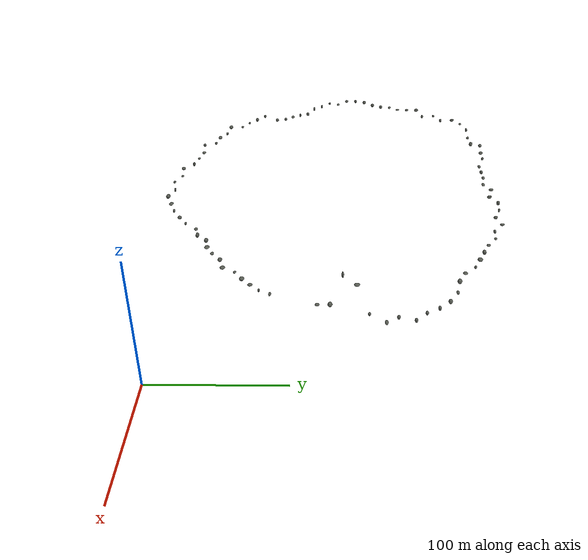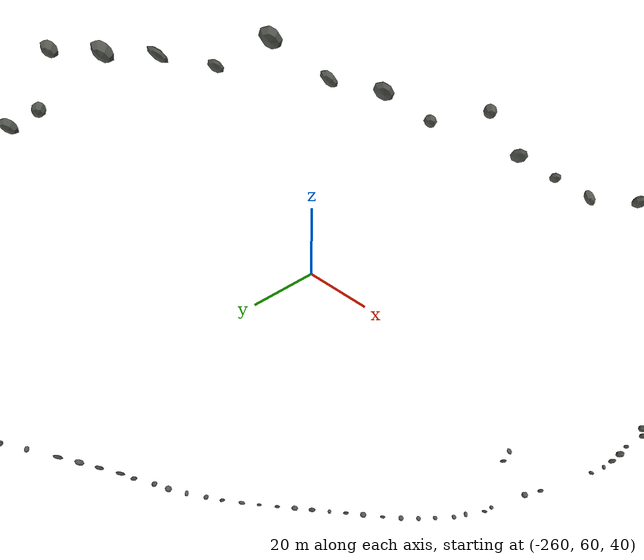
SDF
<?xml version='1.0' encoding='utf-8'?>
<sdf version="1.9">
  <model name="summit_shore">
    <static>true</static>
    <link name="structure">
      <visual name="visual_rock">
        <geometry>
          <mesh>
            <uri>model://summit_shore/meshes/visual/rock.dae</uri>
          </mesh>
        </geometry>
        <material>
          <ambient>0.34 0.355 0.32 1</ambient>
          <diffuse>0.34 0.355 0.32 1</diffuse>
          <specular>0.15 0.15 0.15 1</specular>
          <pbr>
            <metal>
              <roughness>0.8</roughness>
              <metalness>0.0</metalness>
            </metal>
          </pbr>
        </material>
      </visual>
      <collision name="shore_rock_0">
        <geometry>
          <mesh>
            <uri>model://summit_shore/meshes/collision/shore_rock_0.dae</uri>
          </mesh>
        </geometry>
      </collision>
      <collision name="shore_rock_1">
        <geometry>
          <mesh>
            <uri>model://summit_shore/meshes/collision/shore_rock_1.dae</uri>
          </mesh>
        </geometry>
      </collision>
      <collision name="shore_rock_2">
        <geometry>
          <mesh>
            <uri>model://summit_shore/meshes/collision/shore_rock_2.dae</uri>
          </mesh>
        </geometry>
      </collision>
      <collision name="shore_rock_3">
        <geometry>
          <mesh>
            <uri>model://summit_shore/meshes/collision/shore_rock_3.dae</uri>
          </mesh>
        </geometry>
      </collision>
      <collision name="shore_rock_4">
        <geometry>
          <mesh>
            <uri>model://summit_shore/meshes/collision/shore_rock_4.dae</uri>
          </mesh>
        </geometry>
      </collision>
      <collision name="shore_rock_5">
        <geometry>
          <mesh>
            <uri>model://summit_shore/meshes/collision/shore_rock_5.dae</uri>
          </mesh>
        </geometry>
      </collision>
      <collision name="shore_rock_6">
        <geometry>
          <mesh>
            <uri>model://summit_shore/meshes/collision/shore_rock_6.dae</uri>
          </mesh>
        </geometry>
      </collision>
      <collision name="shore_rock_7">
        <geometry>
          <mesh>
            <uri>model://summit_shore/meshes/collision/shore_rock_7.dae</uri>
          </mesh>
        </geometry>
      </collision>
      <collision name="shore_rock_8">
        <geometry>
          <mesh>
            <uri>model://summit_shore/meshes/collision/shore_rock_8.dae</uri>
          </mesh>
        </geometry>
      </collision>
      <collision name="shore_rock_9">
        <geometry>
          <mesh>
            <uri>model://summit_shore/meshes/collision/shore_rock_9.dae</uri>
          </mesh>
        </geometry>
      </collision>
      <collision name="shore_rock_10">
        <geometry>
          <mesh>
            <uri>model://summit_shore/meshes/collision/shore_rock_10.dae</uri>
          </mesh>
        </geometry>
      </collision>
      <collision name="shore_rock_11">
        <geometry>
          <mesh>
            <uri>model://summit_shore/meshes/collision/shore_rock_11.dae</uri>
          </mesh>
        </geometry>
      </collision>
      <collision name="shore_rock_12">
        <geometry>
          <mesh>
            <uri>model://summit_shore/meshes/collision/shore_rock_12.dae</uri>
          </mesh>
        </geometry>
      </collision>
      <collision name="shore_rock_13">
        <geometry>
          <mesh>
            <uri>model://summit_shore/meshes/collision/shore_rock_13.dae</uri>
          </mesh>
        </geometry>
      </collision>
      <collision name="shore_rock_14">
        <geometry>
          <mesh>
            <uri>model://summit_shore/meshes/collision/shore_rock_14.dae</uri>
          </mesh>
        </geometry>
      </collision>
      <collision name="shore_rock_15">
        <geometry>
          <mesh>
            <uri>model://summit_shore/meshes/collision/shore_rock_15.dae</uri>
          </mesh>
        </geometry>
      </collision>
      <collision name="shore_rock_16">
        <geometry>
          <mesh>
            <uri>model://summit_shore/meshes/collision/shore_rock_16.dae</uri>
          </mesh>
        </geometry>
      </collision>
      <collision name="shore_rock_17">
        <geometry>
          <mesh>
            <uri>model://summit_shore/meshes/collision/shore_rock_17.dae</uri>
          </mesh>
        </geometry>
      </collision>
      <collision name="shore_rock_18">
        <geometry>
          <mesh>
            <uri>model://summit_shore/meshes/collision/shore_rock_18.dae</uri>
          </mesh>
        </geometry>
      </collision>
      <collision name="shore_rock_19">
        <geometry>
          <mesh>
            <uri>model://summit_shore/meshes/collision/shore_rock_19.dae</uri>
          </mesh>
        </geometry>
      </collision>
      <collision name="shore_rock_20">
        <geometry>
          <mesh>
            <uri>model://summit_shore/meshes/collision/shore_rock_20.dae</uri>
          </mesh>
        </geometry>
      </collision>
      <collision name="shore_rock_21">
        <geometry>
          <mesh>
            <uri>model://summit_shore/meshes/collision/shore_rock_21.dae</uri>
          </mesh>
        </geometry>
      </collision>
      <collision name="shore_rock_22">
        <geometry>
          <mesh>
            <uri>model://summit_shore/meshes/collision/shore_rock_22.dae</uri>
          </mesh>
        </geometry>
      </collision>
      <collision name="shore_rock_23">
        <geometry>
          <mesh>
            <uri>model://summit_shore/meshes/collision/shore_rock_23.dae</uri>
          </mesh>
        </geometry>
      </collision>
      <collision name="shore_rock_24">
        <geometry>
          <mesh>
            <uri>model://summit_shore/meshes/collision/shore_rock_24.dae</uri>
          </mesh>
        </geometry>
      </collision>
      <collision name="shore_rock_25">
        <geometry>
          <mesh>
            <uri>model://summit_shore/meshes/collision/shore_rock_25.dae</uri>
          </mesh>
        </geometry>
      </collision>
      <collision name="shore_rock_26">
        <geometry>
          <mesh>
            <uri>model://summit_shore/meshes/collision/shore_rock_26.dae</uri>
          </mesh>
        </geometry>
      </collision>
      <collision name="shore_rock_27">
        <geometry>
          <mesh>
            <uri>model://summit_shore/meshes/collision/shore_rock_27.dae</uri>
          </mesh>
        </geometry>
      </collision>
      <collision name="shore_rock_28">
        <geometry>
          <mesh>
            <uri>model://summit_shore/meshes/collision/shore_rock_28.dae</uri>
          </mesh>
        </geometry>
      </collision>
      <collision name="shore_rock_29">
        <geometry>
          <mesh>
            <uri>model://summit_shore/meshes/collision/shore_rock_29.dae</uri>
          </mesh>
        </geometry>
      </collision>
      <collision name="shore_rock_30">
        <geometry>
          <mesh>
            <uri>model://summit_shore/meshes/collision/shore_rock_30.dae</uri>
          </mesh>
        </geometry>
      </collision>
      <collision name="shore_rock_31">
        <geometry>
          <mesh>
            <uri>model://summit_shore/meshes/collision/shore_rock_31.dae</uri>
          </mesh>
        </geometry>
      </collision>
      <collision name="shore_rock_32">
        <geometry>
          <mesh>
            <uri>model://summit_shore/meshes/collision/shore_rock_32.dae</uri>
          </mesh>
        </geometry>
      </collision>
      <collision name="shore_rock_33">
        <geometry>
          <mesh>
            <uri>model://summit_shore/meshes/collision/shore_rock_33.dae</uri>
          </mesh>
        </geometry>
      </collision>
      <collision name="shore_rock_34">
        <geometry>
          <mesh>
            <uri>model://summit_shore/meshes/collision/shore_rock_34.dae</uri>
          </mesh>
        </geometry>
      </collision>
      <collision name="shore_rock_35">
        <geometry>
          <mesh>
            <uri>model://summit_shore/meshes/collision/shore_rock_35.dae</uri>
          </mesh>
        </geometry>
      </collision>
      <collision name="shore_rock_36">
        <geometry>
          <mesh>
            <uri>model://summit_shore/meshes/collision/shore_rock_36.dae</uri>
          </mesh>
        </geometry>
      </collision>
      <collision name="shore_rock_37">
        <geometry>
          <mesh>
            <uri>model://summit_shore/meshes/collision/shore_rock_37.dae</uri>
          </mesh>
        </geometry>
      </collision>
      <collision name="shore_rock_38">
        <geometry>
          <mesh>
            <uri>model://summit_shore/meshes/collision/shore_rock_38.dae</uri>
          </mesh>
        </geometry>
      </collision>
      <collision name="shore_rock_39">
        <geometry>
          <mesh>
            <uri>model://summit_shore/meshes/collision/shore_rock_39.dae</uri>
          </mesh>
        </geometry>
      </collision>
      <collision name="shore_rock_40">
        <geometry>
          <mesh>
            <uri>model://summit_shore/meshes/collision/shore_rock_40.dae</uri>
          </mesh>
        </geometry>
      </collision>
      <collision name="shore_rock_41">
        <geometry>
          <mesh>
            <uri>model://summit_shore/meshes/collision/shore_rock_41.dae</uri>
          </mesh>
        </geometry>
      </collision>
      <collision name="shore_rock_42">
        <geometry>
          <mesh>
            <uri>model://summit_shore/meshes/collision/shore_rock_42.dae</uri>
          </mesh>
        </geometry>
      </collision>
      <collision name="shore_rock_43">
        <geometry>
          <mesh>
            <uri>model://summit_shore/meshes/collision/shore_rock_43.dae</uri>
          </mesh>
        </geometry>
      </collision>
      <collision name="shore_rock_44">
        <geometry>
          <mesh>
            <uri>model://summit_shore/meshes/collision/shore_rock_44.dae</uri>
          </mesh>
        </geometry>
      </collision>
      <collision name="shore_rock_45">
        <geometry>
          <mesh>
            <uri>model://summit_shore/meshes/collision/shore_rock_45.dae</uri>
          </mesh>
        </geometry>
      </collision>
      <collision name="shore_rock_46">
        <geometry>
          <mesh>
            <uri>model://summit_shore/meshes/collision/shore_rock_46.dae</uri>
          </mesh>
        </geometry>
      </collision>
      <collision name="shore_rock_47">
        <geometry>
          <mesh>
            <uri>model://summit_shore/meshes/collision/shore_rock_47.dae</uri>
          </mesh>
        </geometry>
      </collision>
      <collision name="shore_rock_48">
        <geometry>
          <mesh>
            <uri>model://summit_shore/meshes/collision/shore_rock_48.dae</uri>
          </mesh>
        </geometry>
      </collision>
      <collision name="shore_rock_49">
        <geometry>
          <mesh>
            <uri>model://summit_shore/meshes/collision/shore_rock_49.dae</uri>
          </mesh>
        </geometry>
      </collision>
      <collision name="shore_rock_50">
        <geometry>
          <mesh>
            <uri>model://summit_shore/meshes/collision/shore_rock_50.dae</uri>
          </mesh>
        </geometry>
      </collision>
      <collision name="shore_rock_51">
        <geometry>
          <mesh>
            <uri>model://summit_shore/meshes/collision/shore_rock_51.dae</uri>
          </mesh>
        </geometry>
      </collision>
      <collision name="shore_rock_52">
        <geometry>
          <mesh>
            <uri>model://summit_shore/meshes/collision/shore_rock_52.dae</uri>
          </mesh>
        </geometry>
      </collision>
      <collision name="shore_rock_53">
        <geometry>
          <mesh>
            <uri>model://summit_shore/meshes/collision/shore_rock_53.dae</uri>
          </mesh>
        </geometry>
      </collision>
      <collision name="shore_rock_54">
        <geometry>
          <mesh>
            <uri>model://summit_shore/meshes/collision/shore_rock_54.dae</uri>
          </mesh>
        </geometry>
      </collision>
      <collision name="shore_rock_55">
        <geometry>
          <mesh>
            <uri>model://summit_shore/meshes/collision/shore_rock_55.dae</uri>
          </mesh>
        </geometry>
      </collision>
      <collision name="shore_rock_56">
        <geometry>
          <mesh>
            <uri>model://summit_shore/meshes/collision/shore_rock_56.dae</uri>
          </mesh>
        </geometry>
      </collision>
      <collision name="shore_rock_57">
        <geometry>
          <mesh>
            <uri>model://summit_shore/meshes/collision/shore_rock_57.dae</uri>
          </mesh>
        </geometry>
      </collision>
      <collision name="shore_rock_58">
        <geometry>
          <mesh>
            <uri>model://summit_shore/meshes/collision/shore_rock_58.dae</uri>
          </mesh>
        </geometry>
      </collision>
      <collision name="shore_rock_59">
        <geometry>
          <mesh>
            <uri>model://summit_shore/meshes/collision/shore_rock_59.dae</uri>
          </mesh>
        </geometry>
      </collision>
      <collision name="shore_rock_60">
        <geometry>
          <mesh>
            <uri>model://summit_shore/meshes/collision/shore_rock_60.dae</uri>
          </mesh>
        </geometry>
      </collision>
      <collision name="shore_rock_61">
        <geometry>
          <mesh>
            <uri>model://summit_shore/meshes/collision/shore_rock_61.dae</uri>
          </mesh>
        </geometry>
      </collision>
      <collision name="shore_rock_62">
        <geometry>
          <mesh>
            <uri>model://summit_shore/meshes/collision/shore_rock_62.dae</uri>
          </mesh>
        </geometry>
      </collision>
      <collision name="shore_rock_63">
        <geometry>
          <mesh>
            <uri>model://summit_shore/meshes/collision/shore_rock_63.dae</uri>
          </mesh>
        </geometry>
      </collision>
      <collision name="shore_rock_64">
        <geometry>
          <mesh>
            <uri>model://summit_shore/meshes/collision/shore_rock_64.dae</uri>
          </mesh>
        </geometry>
      </collision>
      <collision name="shore_rock_65">
        <geometry>
          <mesh>
            <uri>model://summit_shore/meshes/collision/shore_rock_65.dae</uri>
          </mesh>
        </geometry>
      </collision>
      <collision name="shore_rock_66">
        <geometry>
          <mesh>
            <uri>model://summit_shore/meshes/collision/shore_rock_66.dae</uri>
          </mesh>
        </geometry>
      </collision>
      <collision name="shore_rock_67">
        <geometry>
          <mesh>
            <uri>model://summit_shore/meshes/collision/shore_rock_67.dae</uri>
          </mesh>
        </geometry>
      </collision>
      <collision name="shore_rock_68">
        <geometry>
          <mesh>
            <uri>model://summit_shore/meshes/collision/shore_rock_68.dae</uri>
          </mesh>
        </geometry>
      </collision>
      <collision name="shore_rock_69">
        <geometry>
          <mesh>
            <uri>model://summit_shore/meshes/collision/shore_rock_69.dae</uri>
          </mesh>
        </geometry>
      </collision>
      <collision name="shore_rock_70">
        <geometry>
          <mesh>
            <uri>model://summit_shore/meshes/collision/shore_rock_70.dae</uri>
          </mesh>
        </geometry>
      </collision>
      <collision name="shore_rock_71">
        <geometry>
          <mesh>
            <uri>model://summit_shore/meshes/collision/shore_rock_71.dae</uri>
          </mesh>
        </geometry>
      </collision>
      <collision name="shore_rock_72">
        <geometry>
          <mesh>
            <uri>model://summit_shore/meshes/collision/shore_rock_72.dae</uri>
          </mesh>
        </geometry>
      </collision>
      <collision name="shore_rock_73">
        <geometry>
          <mesh>
            <uri>model://summit_shore/meshes/collision/shore_rock_73.dae</uri>
          </mesh>
        </geometry>
      </collision>
      <collision name="shore_rock_74">
        <geometry>
          <mesh>
            <uri>model://summit_shore/meshes/collision/shore_rock_74.dae</uri>
          </mesh>
        </geometry>
      </collision>
      <collision name="shore_rock_75">
        <geometry>
          <mesh>
            <uri>model://summit_shore/meshes/collision/shore_rock_75.dae</uri>
          </mesh>
        </geometry>
      </collision>
      <collision name="shore_rock_76">
        <geometry>
          <mesh>
            <uri>model://summit_shore/meshes/collision/shore_rock_76.dae</uri>
          </mesh>
        </geometry>
      </collision>
      <collision name="shore_rock_77">
        <geometry>
          <mesh>
            <uri>model://summit_shore/meshes/collision/shore_rock_77.dae</uri>
          </mesh>
        </geometry>
      </collision>
      <collision name="shore_rock_78">
        <geometry>
          <mesh>
            <uri>model://summit_shore/meshes/collision/shore_rock_78.dae</uri>
          </mesh>
        </geometry>
      </collision>
      <collision name="shore_rock_79">
        <geometry>
          <mesh>
            <uri>model://summit_shore/meshes/collision/shore_rock_79.dae</uri>
          </mesh>
        </geometry>
      </collision>
      <collision name="shore_rock_80">
        <geometry>
          <mesh>
            <uri>model://summit_shore/meshes/collision/shore_rock_80.dae</uri>
          </mesh>
        </geometry>
      </collision>
      <collision name="shore_rock_81">
        <geometry>
          <mesh>
            <uri>model://summit_shore/meshes/collision/shore_rock_81.dae</uri>
          </mesh>
        </geometry>
      </collision>
      <collision name="shore_rock_82">
        <geometry>
          <mesh>
            <uri>model://summit_shore/meshes/collision/shore_rock_82.dae</uri>
          </mesh>
        </geometry>
      </collision>
      <collision name="shore_rock_83">
        <geometry>
          <mesh>
            <uri>model://summit_shore/meshes/collision/shore_rock_83.dae</uri>
          </mesh>
        </geometry>
      </collision>
      <collision name="shore_rock_84">
        <geometry>
          <mesh>
            <uri>model://summit_shore/meshes/collision/shore_rock_84.dae</uri>
          </mesh>
        </geometry>
      </collision>
      <collision name="shore_rock_85">
        <geometry>
          <mesh>
            <uri>model://summit_shore/meshes/collision/shore_rock_85.dae</uri>
          </mesh>
        </geometry>
      </collision>
      <collision name="shore_rock_86">
        <geometry>
          <mesh>
            <uri>model://summit_shore/meshes/collision/shore_rock_86.dae</uri>
          </mesh>
        </geometry>
      </collision>
      <collision name="shore_rock_87">
        <geometry>
          <mesh>
            <uri>model://summit_shore/meshes/collision/shore_rock_87.dae</uri>
          </mesh>
        </geometry>
      </collision>
      <collision name="shore_rock_88">
        <geometry>
          <mesh>
            <uri>model://summit_shore/meshes/collision/shore_rock_88.dae</uri>
          </mesh>
        </geometry>
      </collision>
      <collision name="shore_rock_89">
        <geometry>
          <mesh>
            <uri>model://summit_shore/meshes/collision/shore_rock_89.dae</uri>
          </mesh>
        </geometry>
      </collision>
      <collision name="shore_rock_93">
        <geometry>
          <mesh>
            <uri>model://summit_shore/meshes/collision/shore_rock_93.dae</uri>
          </mesh>
        </geometry>
      </collision>
      <collision name="shore_rock_94">
        <geometry>
          <mesh>
            <uri>model://summit_shore/meshes/collision/shore_rock_94.dae</uri>
          </mesh>
        </geometry>
      </collision>
    </link>
  </model>
</sdf>
